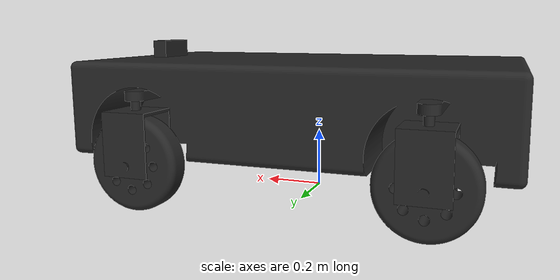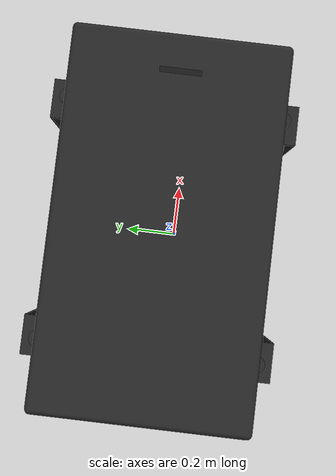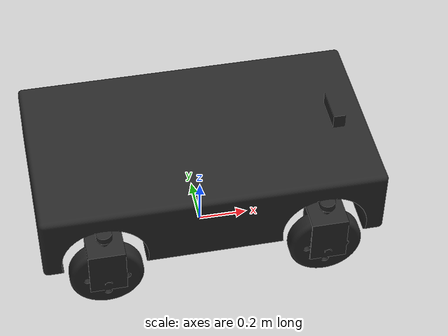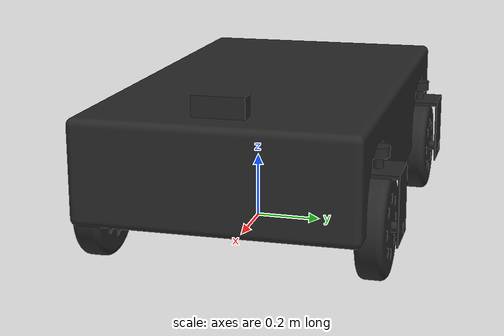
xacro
<?xml version="1.0" ?>
<robot name="vehicle_4ws" xmlns:xacro="http://www.ros.org/wiki/xacro">

<xacro:property name="PI" value="3.1415926535897932384626433832795028841971" />
<xacro:property name="gravitational_acceleration" value="9.8" />
<xacro:property name="vehicle1_Yaw" value="-PI/4" />

<!-- 荷台と連結点のmass -->
<xacro:property name="fusion_vehicle_body_mass" value="2113.272311120373" />
<xacro:property name="vehicle_body_mass" value="313.272311120373" />
<xacro:property name="vehicle_inertia_coef" value="${vehicle_body_mass/fusion_vehicle_body_mass}" />

<xacro:property name="wheel_mass" value="4.639715839283939" />

<!-- frontは受動車輪なので低めに設定 -->
<xacro:property name="front_wheel_joint_damping" value="0.1"/>
<xacro:property name="front_wheel_joint_mu" value="0.001" />
<xacro:property name="front_wheel_joint_friction" value="${front_wheel_joint_mu* gravitational_acceleration * wheel_mass  }" />
<xacro:property name="front_steering_damping" value="5.0" />
<xacro:property name="front_steering_mu" value="0.001" />
<xacro:property name="front_steering_friction" value="${front_steering_mu * gravitational_acceleration * 0.25*vehicle_body_mass}" />

<!-- rearは駆動輪なので、入力以外で動かないように設定 -->
<xacro:property name="wheel_joint_damping" value="0.2"/>
<xacro:property name="wheel_joint_mu" value="0.05" />
<xacro:property name="wheel_joint_friction" value="${wheel_joint_mu* gravitational_acceleration * wheel_mass }" />
<xacro:property name="steering_damping" value="20.0" />
<xacro:property name="steering_mu" value="0.01" />
<xacro:property name="steering_friction" value="${steering_mu * gravitational_acceleration * 0.25*vehicle_body_mass}" />

<!-- wheelの接地面の摩擦などを定義 -->
<xacro:property name="wheel_surface_mu1" value="5.0"/>
<xacro:property name="wheel_surface_mu2" value="5.0" />
<xacro:property name="wheel_kp" value="1e5" />
<xacro:property name="wheel_kd" value="1.0" />
<xacro:property name="wheel_minDepth" value="0.01" />
<xacro:property name="wheel_maxVel" value="0.1" />

<!-- rotationは共通 -->
<xacro:property name="rotational_joint_damping" value="0.01" />
<xacro:property name="rotational_joint_mu" value="0.001" />
<xacro:property name="rotational_joint_friction" value="${rotational_joint_mu * gravitational_acceleration}" />

<xacro:include filename="$(find vehicle_4ws_description)/urdf/materials.xacro" />
<xacro:include filename="$(find vehicle_4ws_description)/urdf/vehicle_4ws.trans" />
<xacro:include filename="$(find vehicle_4ws_description)/urdf/vehicle_4ws.gazebo" />

<link name="base_link"/>

<link name="body_link">
  <inertial>
    <origin xyz="0.001411408730126027 0.05751189617802702 0.2" rpy="0 0 0"/>
    <mass value="${vehicle_body_mass}"/>
    <inertia ixx="${vehicle_inertia_coef*114.688091}" iyy="${vehicle_inertia_coef*336.418835}" izz="${vehicle_inertia_coef*418.647558}" ixy="${vehicle_inertia_coef*0.010139}" iyz="${vehicle_inertia_coef*0.002956}" ixz="${-vehicle_inertia_coef*0.33997}"/>
  </inertial>
  <visual>
    <origin xyz="0 0 -0.376" rpy="0 0 0"/>
    <geometry>
      <mesh filename="package://vehicle_4ws_description/meshes/base_link.stl" scale="0.001 0.001 0.001"/>
    </geometry>
    <material name="_"/>
  </visual>
  <collision>
    <origin xyz="0 0 -0.376" rpy="0 0 0"/>
    <geometry>
      <mesh filename="package://vehicle_4ws_description/meshes/base_link.stl" scale="0.001 0.001 0.001"/>
    </geometry>
  </collision>
</link>

<link name="v1_rear_1">
  <inertial>
    <origin xyz="2.514264385022891e-07 2.540692383215526e-07 -0.014912246259012996" rpy="0 0 0"/>
    <mass value="12.646385127140846"/>
    <inertia ixx="0.752015" iyy="0.005192" izz="0.755318" ixy="0.0" iyz="0.0" ixz="-0.0"/>
  </inertial>
  <visual>
    <origin xyz="0.44955 -0.05752 -0.376" rpy="0 0 0"/>
    <geometry>
      <mesh filename="package://vehicle_4ws_description/meshes/v1_rear_1.stl" scale="0.001 0.001 0.001"/>
    </geometry>
    <material name="_"/>
  </visual>
  <collision>
    <origin xyz="0.44955 -0.05752 -0.376" rpy="0 0 0"/>
    <geometry>
      <mesh filename="package://vehicle_4ws_description/meshes/v1_rear_1.stl" scale="0.001 0.001 0.001"/>
    </geometry>
  </collision>
</link>

<link name="v1_front_1">
  <inertial>
    <origin xyz="2.5142643794717756e-07 2.540691661362393e-07 -0.014912246259013162" rpy="0 0 0"/>
    <mass value="12.64638512714101"/>
    <inertia ixx="0.752015" iyy="0.005192" izz="0.755318" ixy="-0.0" iyz="0.0" ixz="-0.0"/>
  </inertial>
  <visual>
    <origin xyz="-0.45045 -0.05752 -0.376" rpy="0 0 0"/>
    <geometry>
      <mesh filename="package://vehicle_4ws_description/meshes/v1_front_1.stl" scale="0.001 0.001 0.001"/>
    </geometry>
    <material name="_"/>
  </visual>
  <collision>
    <origin xyz="-0.45045 -0.05752 -0.376" rpy="0 0 0"/>
    <geometry>
      <mesh filename="package://vehicle_4ws_description/meshes/v1_front_1.stl" scale="0.001 0.001 0.001"/>
    </geometry>
  </collision>
</link>

<link name="new_hinge_1">
  <inertial>
    <origin xyz="-6.714468377522209e-05 2.5406917214532143e-07 -0.11523004751915897" rpy="0 0 0"/>
    <mass value="4.884144703315957"/>
    <inertia ixx="0.039519" iyy="0.032652" izz="0.021551" ixy="0.0" iyz="0.0" ixz="-3e-05"/>
  </inertial>
  <visual>
    <origin xyz="-0.45045 0.34248 -0.356" rpy="0 0 0"/>
    <geometry>
      <mesh filename="package://vehicle_4ws_description/meshes/new_hinge_1.stl" scale="0.001 0.001 0.001"/>
    </geometry>
    <material name="_"/>
  </visual>
  <collision>
    <origin xyz="-0.45045 0.34248 -0.356" rpy="0 0 0"/>
    <geometry>
      <mesh filename="package://vehicle_4ws_description/meshes/new_hinge_1.stl" scale="0.001 0.001 0.001"/>
    </geometry>
  </collision>
</link>

<link name="new_hinge_3">
  <inertial>
    <origin xyz="-6.714468377522209e-05 2.5406917258941064e-07 -0.11523004751915977" rpy="0 0 0"/>
    <mass value="4.884144703315957"/>
    <inertia ixx="0.039519" iyy="0.032652" izz="0.021551" ixy="-0.0" iyz="0.0" ixz="-3e-05"/>
  </inertial>
  <visual>
    <origin xyz="-0.45045 -0.45752 -0.356" rpy="0 0 0"/>
    <geometry>
      <mesh filename="package://vehicle_4ws_description/meshes/new_hinge_3.stl" scale="0.001 0.001 0.001"/>
    </geometry>
    <material name="_"/>
  </visual>
  <collision>
    <origin xyz="-0.45045 -0.45752 -0.356" rpy="0 0 0"/>
    <geometry>
      <mesh filename="package://vehicle_4ws_description/meshes/new_hinge_3.stl" scale="0.001 0.001 0.001"/>
    </geometry>
  </collision>
</link>

<link name="new_hinge_2">
  <inertial>
    <origin xyz="-6.714468377322369e-05 2.540692444763515e-07 -0.1152300475191588" rpy="0 0 0"/>
    <mass value="4.884144703315957"/>
    <inertia ixx="0.039519" iyy="0.032652" izz="0.021551" ixy="0.0" iyz="0.0" ixz="-3e-05"/>
  </inertial>
  <visual>
    <origin xyz="0.44955 0.34248 -0.356" rpy="0 0 0"/>
    <geometry>
      <mesh filename="package://vehicle_4ws_description/meshes/new_hinge_2.stl" scale="0.001 0.001 0.001"/>
    </geometry>
    <material name="_"/>
  </visual>
  <collision>
    <origin xyz="0.44955 0.34248 -0.356" rpy="0 0 0"/>
    <geometry>
      <mesh filename="package://vehicle_4ws_description/meshes/new_hinge_2.stl" scale="0.001 0.001 0.001"/>
    </geometry>
  </collision>
</link>

<link name="new_hinge_4">
  <inertial>
    <origin xyz="-6.714468377405636e-05 2.5406924475390724e-07 -0.11523004751915963" rpy="0 0 0"/>
    <mass value="4.884144703315957"/>
    <inertia ixx="0.039519" iyy="0.032652" izz="0.021551" ixy="0.0" iyz="0.0" ixz="-3e-05"/>
  </inertial>
  <visual>
    <origin xyz="0.44955 -0.45752 -0.356" rpy="0 0 0"/>
    <geometry>
      <mesh filename="package://vehicle_4ws_description/meshes/new_hinge_4.stl" scale="0.001 0.001 0.001"/>
    </geometry>
    <material name="_"/>
  </visual>
  <collision>
    <origin xyz="0.44955 -0.45752 -0.356" rpy="0 0 0"/>
    <geometry>
      <mesh filename="package://vehicle_4ws_description/meshes/new_hinge_4.stl" scale="0.001 0.001 0.001"/>
    </geometry>
  </collision>
</link>

<!-- ホイールのリンク設定 -->
<link name="new_wheel_1">
  <inertial>
    <origin xyz="3.1709373395083507e-05 2.540692010666312e-07 0.00021681028363659816" rpy="0 0 0"/>
    <mass value="4.639715839283939"/>
    <inertia ixx="0.029034" iyy="0.053334" izz="0.029034" ixy="-0.0" iyz="0.0" ixz="0.0"/>
  </inertial>
  <visual>
    <origin xyz="-0.450031 0.34248 -0.150215" rpy="0 0 0"/>
    <geometry>
      <mesh filename="package://vehicle_4ws_description/meshes/new_wheel_1.stl" scale="0.001 0.001 0.001"/>
    </geometry>
    <material name="_"/>
  </visual>
  <collision>

    <origin xyz="0 0 0" rpy="1.57 0 0"/>
    <geometry>
      <cylinder radius="0.16" length="0.05"/>
    </geometry>

    <!-- ここから SDF の surface/friction -->
    <surface>
      <friction>
        <ode>
          <mu>${wheel_surface_mu1}</mu>
          <mu2>${wheel_surface_mu2}</mu2>
        </ode>
      </friction>
      <contact>
        <ode>
          <kp>${wheel_kp}</kp>
          <kd>${wheel_kd}</kd>
          <minDepth>${wheel_minDepth}</minDepth>
          <maxVel>${wheel_maxVel}</maxVel>
        </ode>
      </contact>
    </surface>
  </collision>
</link>

<link name="new_wheel_2">
  <inertial>
    <origin xyz="3.1709373397914575e-05 2.5406927345317243e-07 0.00021681028363673693" rpy="0 0 0"/>
    <mass value="4.639715839283939"/>
    <inertia ixx="0.029034" iyy="0.053334" izz="0.029034" ixy="0.0" iyz="0.0" ixz="0.0"/>
  </inertial>
  <visual>
    <origin xyz="0.449969 0.34248 -0.150215" rpy="0 0 0"/>
    <geometry>
      <mesh filename="package://vehicle_4ws_description/meshes/new_wheel_2.stl" scale="0.001 0.001 0.001"/>
    </geometry>
    <material name="_"/>
  </visual>
  <collision>
    <origin xyz="0 0 0" rpy="1.57 0 0"/>
    <geometry>
      <cylinder radius="0.16" length="0.05"/>
    </geometry>

    <!-- ここから SDF の surface/friction -->
    <surface>
      <friction>
        <ode>
          <mu>${wheel_surface_mu1}</mu>
          <mu2>${wheel_surface_mu2}</mu2>
        </ode>
      </friction>
      <contact>
        <ode>
          <kp>${wheel_kp}</kp>
          <kd>${wheel_kd}</kd>
          <minDepth>${wheel_minDepth}</minDepth>
          <maxVel>${wheel_maxVel}</maxVel>
        </ode>
      </contact>
    </surface>
  </collision>
</link>

<link name="new_wheel_3">
  <inertial>
    <origin xyz="3.1709373395083507e-05 2.540692015662316e-07 0.00021681028363579324" rpy="0 0 0"/>
    <mass value="4.639715839283939"/>
    <inertia ixx="0.029034" iyy="0.053334" izz="0.029034" ixy="0.0" iyz="0.0" ixz="0.0"/>
  </inertial>
  <visual>
    <origin xyz="-0.450031 -0.45752 -0.150215" rpy="0 0 0"/>
    <geometry>
      <mesh filename="package://vehicle_4ws_description/meshes/new_wheel_3.stl" scale="0.001 0.001 0.001"/>
    </geometry>
    <material name="_"/>
  </visual>
  <collision>
    <origin xyz="0 0 0" rpy="1.57 0 0"/>
    <geometry>
      <cylinder radius="0.16" length="0.05"/>
    </geometry>

    <!-- ここから SDF の surface/friction -->
    <surface>
      <friction>
        <ode>
          <mu>${wheel_surface_mu1}</mu>
          <mu2>${wheel_surface_mu2}</mu2>
        </ode>
      </friction>
      <contact>
        <ode>
          <kp>${wheel_kp}</kp>
          <kd>${wheel_kd}</kd>
          <minDepth>${wheel_minDepth}</minDepth>
          <maxVel>${wheel_maxVel}</maxVel>
        </ode>
      </contact>
    </surface>
  </collision>
</link>

<link name="new_wheel_4">
  <inertial>
    <origin xyz="3.170937339708191e-05 2.540692737307282e-07 0.00021681028363593202" rpy="0 0 0"/>
    <mass value="4.639715839283939"/>
    <inertia ixx="0.029034" iyy="0.053334" izz="0.029034" ixy="0.0" iyz="0.0" ixz="0.0"/>
  </inertial>
  <visual>
    <origin xyz="0.449969 -0.45752 -0.150215" rpy="0 0 0"/>
    <geometry>
      <mesh filename="package://vehicle_4ws_description/meshes/new_wheel_4.stl" scale="0.001 0.001 0.001"/>
    </geometry>
    <material name="_"/>
  </visual>
  <collision>
    <origin xyz="0 0 0" rpy="1.57 0 0"/>
    <geometry>
      <cylinder radius="0.16" length="0.05"/>
    </geometry>

    <!-- ここから SDF の surface/friction -->
    <surface>
      <friction>
        <ode>
          <mu>${wheel_surface_mu1}</mu>
          <mu2>${wheel_surface_mu2}</mu2>
        </ode>
      </friction>
      <contact>
        <ode>
          <kp>${wheel_kp}</kp>
          <kd>${wheel_kd}</kd>
          <minDepth>${wheel_minDepth}</minDepth>
          <maxVel>${wheel_maxVel}</maxVel>
        </ode>
      </contact>
    </surface>
  </collision>
</link>

<joint name="body" type="fixed">
  <origin xyz="0 0 0.376" rpy="0 0 0"/>
  <parent link="base_link"/>
  <child link="body_link"/>
</joint>

<joint name="v1_body_to_rear" type="fixed">
  <origin xyz="-0.44955 0.05752 0" rpy="0 0 0"/>
  <parent link="body_link"/>
  <child link="v1_rear_1"/>
</joint>

<joint name="v1_body_to_front" type="fixed">
  <origin xyz="0.45045 0.05752 0" rpy="0 0 0"/>
  <parent link="body_link"/>
  <child link="v1_front_1"/>
</joint>

<joint name="front_right_steering" type="revolute">
  <origin xyz="0.0 -0.4 -0.02" rpy="0 0 0"/>
  <parent link="v1_front_1"/>
  <child link="new_hinge_1"/>
  <dynamics damping="${front_steering_damping}" friction="${front_steering_friction}"/>
  <axis xyz="0.0 0.0 1.0"/>
  <limit upper="1.047" lower="-1.047" effort="100" velocity="100"/>
</joint>

<joint name="front_right_wheel" type="continuous">
  <origin xyz="-0.000419 0.0 -0.205785" rpy="0 0 0"/>
  <parent link="new_hinge_1"/>
  <child link="new_wheel_1"/>
  <dynamics damping="${front_wheel_joint_damping}" friction="${front_wheel_joint_friction}"/>
  <axis xyz="0.0 1.0 -0.0"/>
</joint>

<joint name="rear_right_wheel" type="continuous">
  <origin xyz="-0.000419 0.0 -0.205785" rpy="0 0 0"/>
  <parent link="new_hinge_2"/>
  <child link="new_wheel_2"/>
  <dynamics damping="${wheel_joint_damping}" friction="${wheel_joint_friction}"/>
  <limit effort="100" velocity="100"/>
  <axis xyz="0.0 1.0 -0.0"/>
</joint>

<joint name="front_left_steering" type="revolute">
  <origin xyz="0.0 0.4 -0.02" rpy="0 0 0"/>
  <parent link="v1_front_1"/>
  <child link="new_hinge_3"/>
  <dynamics damping="${front_steering_damping}" friction="${front_steering_friction}"/>
  <axis xyz="0.0 0.0 1.0"/>
  <limit upper="1.047" lower="-1.047" effort="100" velocity="100"/>
</joint>

<joint name="front_left_wheel" type="continuous">
  <origin xyz="-0.000419 0.0 -0.205785" rpy="0 0 0"/>
  <parent link="new_hinge_3"/>
  <child link="new_wheel_3"/>
  <dynamics damping="${front_wheel_joint_damping}" friction="${front_wheel_joint_friction}"/>
  <axis xyz="0.0 1.0 -0.0"/>
</joint>

<joint name="rear_left_wheel" type="continuous">
  <origin xyz="-0.000419 0.0 -0.205785" rpy="0 0 0"/>
  <parent link="new_hinge_4"/>
  <child link="new_wheel_4"/>
  <dynamics damping="${wheel_joint_damping}" friction="${wheel_joint_friction}"/>
  <limit effort="100" velocity="100"/>
  <axis xyz="0.0 1.0 -0.0"/>
</joint>

<joint name="rear_to_Rsteering" type="fixed">
  <origin xyz="0.0 -0.4 -0.02" rpy="0 0 0"/>
  <parent link="v1_rear_1"/>
  <child link="new_hinge_2"/>
</joint>

<joint name="rear_to_Lsteering" type="fixed">
  <origin xyz="0.0 0.4 -0.02" rpy="0 0 0"/>
  <parent link="v1_rear_1"/>
  <child link="new_hinge_4"/>
</joint>

</robot>

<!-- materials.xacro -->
<robot name="vehicle_4ws" xmlns:xacro="http://www.ros.org/wiki/xacro" >

<material name="silver_default">
  <color rgba="0.700 0.700 0.700 1.000"/>
</material>
<material name="_">
  <color rgba="0.15294117647058825 0.15294117647058825 0.15294117647058825 1.0"/>
</material>

<!-- Color -->
<material name="green">
	<color rgba="0.0 0.8 0.0 1.0"/>
</material>
<material name="red">
  <color rgba="0.8 0.0 0.0 1.0"/>
</material>
<material name="white">
  <color rgba="1.0 1.0 1.0 1.0"/>
</material>
<material name="body_red">
    <color rgba="1.0 0.0 0.0 0.5"/>
</material>
<material name="yellow">
    <color rgba="1.0 1.0 0.0 1.0"/>
</material>
<material name="blue">
    <color rgba="0.0 0.0 1.0 1.0"/>
</material>
<material name="orange">
    <color rgba="1.0 0.4 0.0 1.0"/>
</material>
<material name="black">
    <color rgba="0.0 0.0 0.0 1.0"/>
</material>
<material name="gray">
    <color rgba="0.5 0.5 0.5 1.0"/>
</material>

</robot>

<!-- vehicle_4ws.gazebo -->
<robot name="vehicle_4ws" xmlns:xacro="http://www.ros.org/wiki/xacro" >

<xacro:property name="body_color" value="Gazebo/Red" />
<xacro:property name="carrier" value="Gazebo/Yellow" />
<xacro:property name="hinge" value="Gazebo/Silver" />
<xacro:property name="sliding_machine" value="Gazebo/Orange" />
<xacro:property name="wheel" value="Gazebo/Gray" />

<gazebo>
    <plugin name="gazebo_ros_control" filename="libgazebo_ros_control.so">
    <robotNamespace>/vehicle_4ws</robotNamespace>
    <robotSimType>gazebo_ros_control/DefaultRobotHWSim</robotSimType>
    <legacyModeNS>true</legacyModeNS>
    </plugin>
</gazebo>

<!-- 各リンクの絶対座標を取得するためのプラグイン -->
<gazebo>
  <plugin name="ground_truth" filename="libgazebo_ros_p3d.so">
    <robotNamespace>/vehicle_4ws</robotNamespace>
    <bodyName>base_link</bodyName>
    <frameName>world</frameName>
    <topicName>true_base_link</topicName>
  </plugin>
</gazebo>

<gazebo>
  <plugin name="ground_truth" filename="libgazebo_ros_p3d.so">
    <robotNamespace>/vehicle_4ws</robotNamespace>
    <bodyName>body_link</bodyName>
    <frameName>world</frameName>
    <topicName>true_body_link</topicName>
  </plugin>
</gazebo>

<gazebo>
  <plugin name="ground_truth" filename="libgazebo_ros_p3d.so">
    <robotNamespace>/vehicle_4ws</robotNamespace>
    <bodyName>new_hinge_1</bodyName>
    <frameName>world</frameName>
    <topicName>true_front_right_steering_link</topicName>
  </plugin>
</gazebo>

<gazebo>
  <plugin name="ground_truth" filename="libgazebo_ros_p3d.so">
    <robotNamespace>/vehicle_4ws</robotNamespace>
    <bodyName>new_hinge_3</bodyName>
    <frameName>world</frameName>
    <topicName>true_front_left_steering_link</topicName>
  </plugin>
</gazebo>

<gazebo>
  <plugin name="ground_truth" filename="libgazebo_ros_p3d.so">
    <robotNamespace>/vehicle_4ws</robotNamespace>
    <bodyName>new_hinge_2</bodyName>
    <frameName>world</frameName>
    <topicName>true_rear_right_steering_link</topicName>
  </plugin>
</gazebo>

<gazebo>
  <plugin name="ground_truth" filename="libgazebo_ros_p3d.so">
    <robotNamespace>/vehicle_4ws</robotNamespace>
    <bodyName>new_hinge_4</bodyName>
    <frameName>world</frameName>
    <topicName>true_rear_left_steering_link</topicName>
  </plugin>
</gazebo>

<gazebo>
  <plugin name="plot3d_trajectory" filename="libLinkPlot3DPlugin.so">
    <!-- 軌跡更新頻度（Hz） -->
    <frequency>30</frequency>

    <plot>
      <!-- モデル名::リンク名 -->
      <link>vehicle_4ws::base_link</link>
      <!-- リンク座標系に対するオフセット(x y z roll pitch yaw) -->
      <pose>-0.5 0 0.01 0 0 0</pose>
      <!-- Gazebo 内定義済みマテリアル -->
      <material>Gazebo/Red</material>
    </plot>

    <plot>
      <link>vehicle_4ws::new_wheel_1</link>
      <pose>0 0 0 0 0 0</pose>
      <material>Gazebo/Blue</material>
    </plot>

    <plot>
      <link>vehicle_4ws::new_wheel_3</link>
      <pose>0 0 0 0 0 0</pose>
      <material>Gazebo/Blue</material>
    </plot>

    <plot>
      <link>vehicle_4ws::v1_front_1</link>
      <pose>0 0 0 0 0 0</pose>
      <material>Gazebo/Blue</material>
    </plot>

  </plugin>
</gazebo>

<gazebo reference="body_link">
  <material>${body_color}</material>
  <mu1>0.2</mu1>
  <mu2>0.2</mu2>
  <selfCollide>true</selfCollide>
  <gravity>true</gravity>
</gazebo>

<gazebo reference="v1_rear_1">
  <material>${body_color}</material>
  <mu1>0.2</mu1>
  <mu2>0.2</mu2>
  <selfCollide>true</selfCollide>
</gazebo>

<gazebo reference="v1_front_1">
  <material>${body_color}</material>
  <mu1>0.2</mu1>
  <mu2>0.2</mu2>
  <selfCollide>true</selfCollide>
</gazebo>

<gazebo reference="new_hinge_1">
  <material>${hinge}</material>
  <mu1>0.2</mu1>
  <mu2>0.2</mu2>
  <selfCollide>false</selfCollide>
</gazebo>

<gazebo reference="new_wheel_1">
  <material>${wheel}</material>
  <mu1>0.2</mu1>
  <mu2>0.2</mu2>
  <selfCollide>false</selfCollide>
</gazebo>

<gazebo reference="new_wheel_2">
  <material>${wheel}</material>
  <mu1>5.0</mu1>
  <mu2>5.0</mu2>
  <selfCollide>true</selfCollide>
</gazebo>

<gazebo reference="new_hinge_3">
  <material>${hinge}</material>
  <mu1>0.2</mu1>
  <mu2>0.2</mu2>
  <selfCollide>false</selfCollide>
</gazebo>

<gazebo reference="new_wheel_3">
  <material>${wheel}</material>
  <mu1>0.2</mu1>
  <mu2>0.2</mu2>
  <selfCollide>false</selfCollide>
</gazebo>

<gazebo reference="new_wheel_4">
  <material>${wheel}</material>
  <mu1>5.0</mu1>
  <mu2>5.0</mu2>
  <selfCollide>true</selfCollide>
</gazebo>

<gazebo reference="new_hinge_2">
  <material>${hinge}</material>
  <mu1>0.2</mu1>
  <mu2>0.2</mu2>
  <selfCollide>true</selfCollide>
</gazebo>

<gazebo reference="new_hinge_4">
  <material>${hinge}</material>
  <mu1>0.2</mu1>
  <mu2>0.2</mu2>
  <selfCollide>true</selfCollide>
</gazebo>

</robot>
